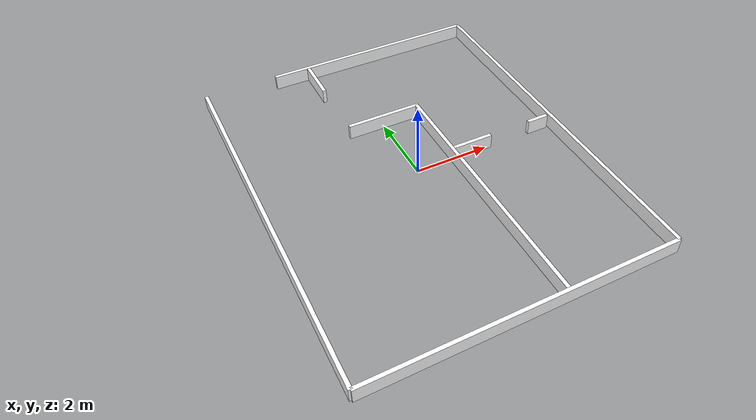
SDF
<?xml version="1.0" ?>
<sdf version="1.8">
  <model name="robot_cafe_arena_v2_frame">
    <static>true</static>
    <link name="link">
      <inertial>
        <mass>1.0</mass>
      </inertial>

      <collision name="wall_front">
        <pose>-4.0 0.0 0.2 0.0 0.0 0.0</pose>
        <geometry>
          <box>
            <size>0.1 10.0 0.4</size>
          </box>
        </geometry>
      </collision>

      <visual name="wall_front_v">
        <pose>-4.0 0.0 0.2 0.0 0.0 0.0</pose>
        <geometry>
          <box>
            <size>0.1 10.0 0.4</size>
          </box>
        </geometry>

        <material>
          <diffuse>1.0 1.0 1.0 1.0</diffuse>
          <specular>1.0 1.0 1.0 1.0</specular>
        </material>
      </visual>

      <collision name="wall_side_left">
        <pose>1.0 5.0 0.2 0.0 0.0 1.57</pose>
        <geometry>
          <box>
            <size>0.1 6.0 0.4</size>
          </box>
        </geometry>
      </collision>

      <visual name="wall_side_left_v">
        <pose>1.0 5.0 0.2 0.0 0.0 1.57</pose>
        <geometry>
          <box>
            <size>0.1 6.0 0.4</size>
          </box>
        </geometry>

        <material>
          <diffuse>1.0 1.0 1.0 1.0</diffuse>
          <specular>1.0 1.0 1.0 1.0</specular>
        </material>
      </visual>

      <collision name="wall_side_right">
        <pose>0.0 -5.0 0.2 0.0 0.0 1.57</pose>
        <geometry>
          <box>
            <size>0.1 8.0 0.4</size>
          </box>
        </geometry>
      </collision>

      <visual name="wall_side_right_v">
        <pose>0.0 -5.0 0.2 0.0 0.0 1.57</pose>
        <geometry>
          <box>
            <size>0.1 8.0 0.4</size>
          </box>
        </geometry>

        <material>
          <diffuse>1.0 1.0 1.0 1.0</diffuse>
          <specular>1.0 1.0 1.0 1.0</specular>
        </material>
      </visual>

      <collision name="wall_back">
        <pose>4.0 0.0 0.2 0.0 0.0 0.0</pose>
        <geometry>
          <box>
            <size>0.1 10.0 0.4</size>
          </box>
        </geometry>
      </collision>

      <visual name="wall_back_v">
        <pose>4.0 0.0 0.2 0.0 0.0 0.0</pose>
        <geometry>
          <box>
            <size>0.1 10.0 0.4</size>
          </box>
        </geometry>

        <material>
          <diffuse>1.0 1.0 1.0 1.0</diffuse>
          <specular>1.0 1.0 1.0 1.0</specular>
        </material>
      </visual>

      <collision name="inside_wall_back">
        <pose>3.6 0.0 0.2 0.0 0.0 1.57</pose>
        <geometry>
          <box>
            <size>0.1 0.6 0.4</size>
          </box>
        </geometry>
      </collision>

      <visual name="inside_wall_back_v">
        <pose>3.6 0.0 0.2 0.0 0.0 1.57</pose>
        <geometry>
          <box>
            <size>0.1 0.6 0.4</size>
          </box>
        </geometry>

        <material>
          <diffuse>1.0 1.0 1.0 1.0</diffuse>
          <specular>1.0 1.0 1.0 1.0</specular>
        </material>
      </visual>

      <collision name="inside_wall_center">
        <pose>1.595 0.0 0.2 0.0 0.0 1.57</pose>
        <geometry>
          <box>
            <size>0.1 1.09 0.4</size>
          </box>
        </geometry>
      </collision>

      <visual name="inside_wall_center_v">
        <pose>1.595 0.0 0.2 0.0 0.0 1.57</pose>
        <geometry>
          <box>
            <size>0.1 1.09 0.4</size>
          </box>
        </geometry>

        <material>
          <diffuse>1.0 1.0 1.0 1.0</diffuse>
          <specular>1.0 1.0 1.0 1.0</specular>
        </material>
      </visual>

      <collision name="inside_wall_front">
        <pose>0.025 2.0 0.2 0.0 0.0 1.57</pose>
        <geometry>
          <box>
            <size>0.1 2.05 0.4</size>
          </box>
        </geometry>
      </collision>

      <visual name="inside_wall_front_v">
        <pose>0.025 2.0 0.2 0.0 0.0 1.57</pose>
        <geometry>
          <box>
            <size>0.1 2.05 0.4</size>
          </box>
        </geometry>

        <material>
          <diffuse>1.0 1.0 1.0 1.0</diffuse>
          <specular>1.0 1.0 1.0 1.0</specular>
        </material>
      </visual>

      <collision name="inside_wall_side_left">
        <pose>-1.0 4.345 0.2 0.0 0.0 0.0</pose>
        <geometry>
          <box>
            <size>0.1 1.21 0.4</size>
          </box>
        </geometry>
      </collision>

      <visual name="inside_wall_side_left_v">
        <pose>-1.0 4.345 0.2 0.0 0.0 0.0</pose>
        <geometry>
          <box>
            <size>0.1 1.21 0.4</size>
          </box>
        </geometry>

        <material>
          <diffuse>1.0 1.0 1.0 1.0</diffuse>
          <specular>1.0 1.0 1.0 1.0</specular>
        </material>
      </visual>

      <collision name="inside_wall_side_right">
        <pose>1.0 -1.5 0.2 0.0 0.0 0.0</pose>
        <geometry>
          <box>
            <size>0.1 7.0 0.4</size>
          </box>
        </geometry>
      </collision>

      <visual name="inside_wall_side_right_v">
        <pose>1.0 -1.5 0.2 0.0 0.0 0.0</pose>
        <geometry>
          <box>
            <size>0.1 7.0 0.4</size>
          </box>
        </geometry>

        <material>
          <diffuse>1.0 1.0 1.0 1.0</diffuse>
          <specular>1.0 1.0 1.0 1.0</specular>
        </material>
      </visual>
    </link>
  </model>
</sdf>
